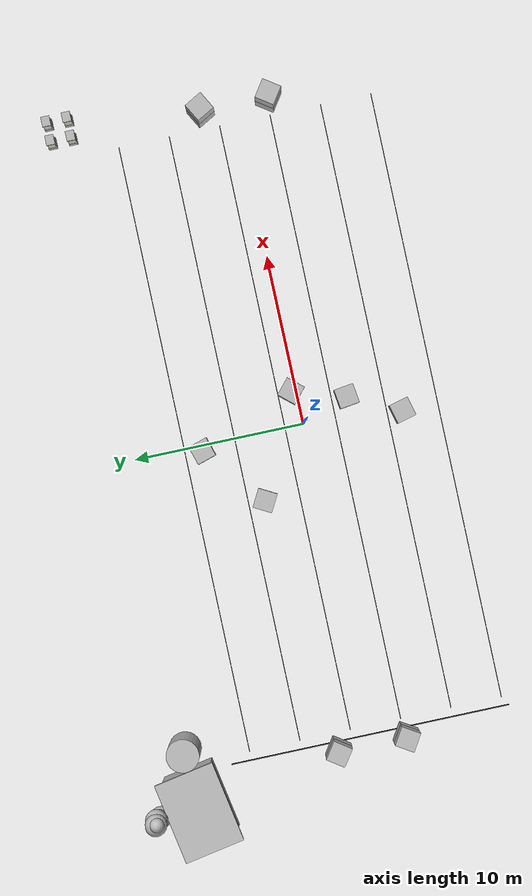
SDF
<sdf version="1.6">
 <world name="default">
  <model name="bee_hives">
   <static>true</static>
   <link name="stand0">
    <pose>19.000 9.600 0.14 0 0 0</pose>
    <visual name="stand0_v">
     <geometry><box><size>0.600 0.500 0.280</size></box></geometry>
     <material>
      <script>
       <uri>model://orchard/materials/scripts</uri>
       <uri>model://orchard/materials/textures</uri>
       <name>Orchard/Timber</name>
      </script>
     </material>
    </visual>
   </link>
   <link name="hive0">
    <pose>19.000 9.600 0.60 0 0 0</pose>
    <visual name="hive0_v">
     <geometry><box><size>0.520 0.440 0.640</size></box></geometry>
     <material><ambient>0.320 0.316 0.296 1.00</ambient><diffuse>0.800 0.790 0.740 1.00</diffuse></material>
    </visual>
   </link>
   <link name="lid0">
    <pose>19.000 9.600 0.95 0 0 0</pose>
    <visual name="lid0_v">
     <geometry><box><size>0.580 0.500 0.060</size></box></geometry>
     <material>
      <script>
       <uri>model://orchard/materials/scripts</uri>
       <uri>model://orchard/materials/textures</uri>
       <name>Orchard/Metal</name>
      </script>
     </material>
    </visual>
   </link>
   <link name="stand1">
    <pose>20.100 9.600 0.14 0 0 0</pose>
    <visual name="stand1_v">
     <geometry><box><size>0.600 0.500 0.280</size></box></geometry>
     <material>
      <script>
       <uri>model://orchard/materials/scripts</uri>
       <uri>model://orchard/materials/textures</uri>
       <name>Orchard/Timber</name>
      </script>
     </material>
    </visual>
   </link>
   <link name="hive1">
    <pose>20.100 9.600 0.60 0 0 0</pose>
    <visual name="hive1_v">
     <geometry><box><size>0.520 0.440 0.640</size></box></geometry>
     <material><ambient>0.320 0.316 0.296 1.00</ambient><diffuse>0.800 0.790 0.740 1.00</diffuse></material>
    </visual>
   </link>
   <link name="lid1">
    <pose>20.100 9.600 0.95 0 0 0</pose>
    <visual name="lid1_v">
     <geometry><box><size>0.580 0.500 0.060</size></box></geometry>
     <material>
      <script>
       <uri>model://orchard/materials/scripts</uri>
       <uri>model://orchard/materials/textures</uri>
       <name>Orchard/Metal</name>
      </script>
     </material>
    </visual>
   </link>
   <link name="stand2">
    <pose>19.000 10.800 0.14 0 0 0</pose>
    <visual name="stand2_v">
     <geometry><box><size>0.600 0.500 0.280</size></box></geometry>
     <material>
      <script>
       <uri>model://orchard/materials/scripts</uri>
       <uri>model://orchard/materials/textures</uri>
       <name>Orchard/Timber</name>
      </script>
     </material>
    </visual>
   </link>
   <link name="hive2">
    <pose>19.000 10.800 0.60 0 0 0</pose>
    <visual name="hive2_v">
     <geometry><box><size>0.520 0.440 0.640</size></box></geometry>
     <material><ambient>0.320 0.316 0.296 1.00</ambient><diffuse>0.800 0.790 0.740 1.00</diffuse></material>
    </visual>
   </link>
   <link name="lid2">
    <pose>19.000 10.800 0.95 0 0 0</pose>
    <visual name="lid2_v">
     <geometry><box><size>0.580 0.500 0.060</size></box></geometry>
     <material>
      <script>
       <uri>model://orchard/materials/scripts</uri>
       <uri>model://orchard/materials/textures</uri>
       <name>Orchard/Metal</name>
      </script>
     </material>
    </visual>
   </link>
   <link name="stand3">
    <pose>20.100 10.800 0.14 0 0 0</pose>
    <visual name="stand3_v">
     <geometry><box><size>0.600 0.500 0.280</size></box></geometry>
     <material>
      <script>
       <uri>model://orchard/materials/scripts</uri>
       <uri>model://orchard/materials/textures</uri>
       <name>Orchard/Timber</name>
      </script>
     </material>
    </visual>
   </link>
   <link name="hive3">
    <pose>20.100 10.800 0.60 0 0 0</pose>
    <visual name="hive3_v">
     <geometry><box><size>0.520 0.440 0.640</size></box></geometry>
     <material><ambient>0.320 0.316 0.296 1.00</ambient><diffuse>0.800 0.790 0.740 1.00</diffuse></material>
    </visual>
   </link>
   <link name="lid3">
    <pose>20.100 10.800 0.95 0 0 0</pose>
    <visual name="lid3_v">
     <geometry><box><size>0.580 0.500 0.060</size></box></geometry>
     <material>
      <script>
       <uri>model://orchard/materials/scripts</uri>
       <uri>model://orchard/materials/textures</uri>
       <name>Orchard/Metal</name>
      </script>
     </material>
    </visual>
   </link>
  </model>
  <model name="irrigation">
   <static>true</static>
   <link name="header">
    <pose>-18.500 0 0.05 1.5708 0 0</pose>
    <visual name="header_v">
     <geometry><cylinder><radius>0.0350</radius><length>16.5000</length></cylinder></geometry>
     <material><ambient>0.064 0.064 0.068 1.00</ambient><diffuse>0.160 0.160 0.170 1.00</diffuse></material>
    </visual>
   </link>
   <link name="drip0">
    <pose>0 -7.920 0.028 0 1.5708 0</pose>
    <visual name="drip0_v">
     <geometry><cylinder><radius>0.0160</radius><length>36.0000</length></cylinder></geometry>
     <material><ambient>0.064 0.064 0.068 1.00</ambient><diffuse>0.160 0.160 0.170 1.00</diffuse></material>
    </visual>
   </link>
   <link name="drip1">
    <pose>0 -4.920 0.028 0 1.5708 0</pose>
    <visual name="drip1_v">
     <geometry><cylinder><radius>0.0160</radius><length>36.0000</length></cylinder></geometry>
     <material><ambient>0.064 0.064 0.068 1.00</ambient><diffuse>0.160 0.160 0.170 1.00</diffuse></material>
    </visual>
   </link>
   <link name="drip2">
    <pose>0 -1.920 0.028 0 1.5708 0</pose>
    <visual name="drip2_v">
     <geometry><cylinder><radius>0.0160</radius><length>36.0000</length></cylinder></geometry>
     <material><ambient>0.064 0.064 0.068 1.00</ambient><diffuse>0.160 0.160 0.170 1.00</diffuse></material>
    </visual>
   </link>
   <link name="drip3">
    <pose>0 1.080 0.028 0 1.5708 0</pose>
    <visual name="drip3_v">
     <geometry><cylinder><radius>0.0160</radius><length>36.0000</length></cylinder></geometry>
     <material><ambient>0.064 0.064 0.068 1.00</ambient><diffuse>0.160 0.160 0.170 1.00</diffuse></material>
    </visual>
   </link>
   <link name="drip4">
    <pose>0 4.080 0.028 0 1.5708 0</pose>
    <visual name="drip4_v">
     <geometry><cylinder><radius>0.0160</radius><length>36.0000</length></cylinder></geometry>
     <material><ambient>0.064 0.064 0.068 1.00</ambient><diffuse>0.160 0.160 0.170 1.00</diffuse></material>
    </visual>
   </link>
   <link name="drip5">
    <pose>0 7.080 0.028 0 1.5708 0</pose>
    <visual name="drip5_v">
     <geometry><cylinder><radius>0.0160</radius><length>36.0000</length></cylinder></geometry>
     <material><ambient>0.064 0.064 0.068 1.00</ambient><diffuse>0.160 0.160 0.170 1.00</diffuse></material>
    </visual>
   </link>
  </model>
  <model name="packing_shed">
   <static>true</static>
   <link name="walls">
    <pose>-20.200 10.400 1.20 0 0 0.18</pose>
    <collision name="walls_c"><geometry><box><size>4.200 3.000 2.400</size></box></geometry></collision>
    <visual name="walls_v">
     <geometry><box><size>4.200 3.000 2.400</size></box></geometry>
     <material>
      <script>
       <uri>model://orchard/materials/scripts</uri>
       <uri>model://orchard/materials/textures</uri>
       <name>Orchard/Timber</name>
      </script>
     </material>
    </visual>
   </link>
   <link name="roof">
    <pose>-20.200 10.400 2.47 0 0 0.18</pose>
    <visual name="roof_v">
     <geometry><box><size>4.700 3.500 0.140</size></box></geometry>
     <material>
      <script>
       <uri>model://orchard/materials/scripts</uri>
       <uri>model://orchard/materials/textures</uri>
       <name>Orchard/Metal</name>
      </script>
     </material>
    </visual>
   </link>
  </model>
  <model name="water_tank">
   <static>true</static>
   <link name="drum">
    <pose>-17.000 10.700 1.00 0 0 0</pose>
    <collision name="drum_c">
     <geometry><cylinder><radius>0.9500</radius><length>2.0000</length></cylinder></geometry>
    </collision>
    <visual name="drum_v">
     <geometry><cylinder><radius>0.9500</radius><length>2.0000</length></cylinder></geometry>
     <material>
      <script>
       <uri>model://orchard/materials/scripts</uri>
       <uri>model://orchard/materials/textures</uri>
       <name>Orchard/Metal</name>
      </script>
     </material>
    </visual>
   </link>
  </model>
  <model name="bin_0">
   <static>true</static>
   <link name="crate0">
    <pose>-18.900 -2.000 0.380 0 0 1.017</pose>
    <collision name="crate0_c"><geometry><box><size>1.150 1.150 0.740</size></box></geometry></collision>
    <visual name="crate0_v">
     <geometry><box><size>1.150 1.150 0.740</size></box></geometry>
     <material>
      <script>
       <uri>model://orchard/materials/scripts</uri>
       <uri>model://orchard/materials/textures</uri>
       <name>Orchard/Timber</name>
      </script>
     </material>
    </visual>
   </link>
   <link name="crate1">
    <pose>-18.900 -2.000 1.140 0 0 1.017</pose>
    <visual name="crate1_v">
     <geometry><box><size>1.150 1.150 0.740</size></box></geometry>
     <material>
      <script>
       <uri>model://orchard/materials/scripts</uri>
       <uri>model://orchard/materials/textures</uri>
       <name>Orchard/Timber</name>
      </script>
     </material>
    </visual>
   </link>
  </model>
  <model name="bin_1">
   <static>true</static>
   <link name="crate0">
    <pose>-18.900 2.000 0.380 0 0 2.535</pose>
    <collision name="crate0_c"><geometry><box><size>1.150 1.150 0.740</size></box></geometry></collision>
    <visual name="crate0_v">
     <geometry><box><size>1.150 1.150 0.740</size></box></geometry>
     <material>
      <script>
       <uri>model://orchard/materials/scripts</uri>
       <uri>model://orchard/materials/textures</uri>
       <name>Orchard/Timber</name>
      </script>
     </material>
    </visual>
   </link>
   <link name="crate1">
    <pose>-18.900 2.000 1.140 0 0 2.535</pose>
    <visual name="crate1_v">
     <geometry><box><size>1.150 1.150 0.740</size></box></geometry>
     <material>
      <script>
       <uri>model://orchard/materials/scripts</uri>
       <uri>model://orchard/materials/textures</uri>
       <name>Orchard/Timber</name>
      </script>
     </material>
    </visual>
   </link>
  </model>
  <model name="bin_2">
   <static>true</static>
   <link name="crate0">
    <pose>18.900 -2.000 0.380 0 0 2.539</pose>
    <collision name="crate0_c"><geometry><box><size>1.150 1.150 0.740</size></box></geometry></collision>
    <visual name="crate0_v">
     <geometry><box><size>1.150 1.150 0.740</size></box></geometry>
     <material>
      <script>
       <uri>model://orchard/materials/scripts</uri>
       <uri>model://orchard/materials/textures</uri>
       <name>Orchard/Timber</name>
      </script>
     </material>
    </visual>
   </link>
   <link name="crate1">
    <pose>18.900 -2.000 1.140 0 0 2.539</pose>
    <visual name="crate1_v">
     <geometry><box><size>1.150 1.150 0.740</size></box></geometry>
     <material>
      <script>
       <uri>model://orchard/materials/scripts</uri>
       <uri>model://orchard/materials/textures</uri>
       <name>Orchard/Timber</name>
      </script>
     </material>
    </visual>
   </link>
  </model>
  <model name="bin_3">
   <static>true</static>
   <link name="crate0">
    <pose>18.900 2.000 0.380 0 0 2.075</pose>
    <collision name="crate0_c"><geometry><box><size>1.150 1.150 0.740</size></box></geometry></collision>
    <visual name="crate0_v">
     <geometry><box><size>1.150 1.150 0.740</size></box></geometry>
     <material>
      <script>
       <uri>model://orchard/materials/scripts</uri>
       <uri>model://orchard/materials/textures</uri>
       <name>Orchard/Timber</name>
      </script>
     </material>
    </visual>
   </link>
   <link name="crate1">
    <pose>18.900 2.000 1.140 0 0 2.075</pose>
    <visual name="crate1_v">
     <geometry><box><size>1.150 1.150 0.740</size></box></geometry>
     <material>
      <script>
       <uri>model://orchard/materials/scripts</uri>
       <uri>model://orchard/materials/textures</uri>
       <name>Orchard/Timber</name>
      </script>
     </material>
    </visual>
   </link>
  </model>
  <model name="bin_4">
   <static>true</static>
   <link name="crate0">
    <pose>-0.459 -5.759 0.380 0 0 1.822</pose>
    <collision name="crate0_c"><geometry><box><size>1.150 1.150 0.740</size></box></geometry></collision>
    <visual name="crate0_v">
     <geometry><box><size>1.150 1.150 0.740</size></box></geometry>
     <material>
      <script>
       <uri>model://orchard/materials/scripts</uri>
       <uri>model://orchard/materials/textures</uri>
       <name>Orchard/Timber</name>
      </script>
     </material>
    </visual>
   </link>
  </model>
  <model name="bin_5">
   <static>true</static>
   <link name="crate0">
    <pose>1.019 -2.774 0.380 0 0 0.138</pose>
    <collision name="crate0_c"><geometry><box><size>1.150 1.150 0.740</size></box></geometry></collision>
    <visual name="crate0_v">
     <geometry><box><size>1.150 1.150 0.740</size></box></geometry>
     <material>
      <script>
       <uri>model://orchard/materials/scripts</uri>
       <uri>model://orchard/materials/textures</uri>
       <name>Orchard/Timber</name>
      </script>
     </material>
    </visual>
   </link>
  </model>
  <model name="bin_6">
   <static>true</static>
   <link name="crate0">
    <pose>1.990 0.297 0.380 0 0 2.426</pose>
    <collision name="crate0_c"><geometry><box><size>1.150 1.150 0.740</size></box></geometry></collision>
    <visual name="crate0_v">
     <geometry><box><size>1.150 1.150 0.740</size></box></geometry>
     <material>
      <script>
       <uri>model://orchard/materials/scripts</uri>
       <uri>model://orchard/materials/textures</uri>
       <name>Orchard/Timber</name>
      </script>
     </material>
    </visual>
   </link>
  </model>
  <model name="bin_7">
   <static>true</static>
   <link name="crate0">
    <pose>-3.877 3.097 0.380 0 0 1.068</pose>
    <collision name="crate0_c"><geometry><box><size>1.150 1.150 0.740</size></box></geometry></collision>
    <visual name="crate0_v">
     <geometry><box><size>1.150 1.150 0.740</size></box></geometry>
     <material>
      <script>
       <uri>model://orchard/materials/scripts</uri>
       <uri>model://orchard/materials/textures</uri>
       <name>Orchard/Timber</name>
      </script>
     </material>
    </visual>
   </link>
  </model>
  <model name="bin_8">
   <static>true</static>
   <link name="crate0">
    <pose>-0.319 6.044 0.380 0 0 0.298</pose>
    <collision name="crate0_c"><geometry><box><size>1.150 1.150 0.740</size></box></geometry></collision>
    <visual name="crate0_v">
     <geometry><box><size>1.150 1.150 0.740</size></box></geometry>
     <material>
      <script>
       <uri>model://orchard/materials/scripts</uri>
       <uri>model://orchard/materials/textures</uri>
       <name>Orchard/Timber</name>
      </script>
     </material>
    </visual>
   </link>
  </model>
  <model name="windbreak_0">
   <static>true</static>
   <link name="trunk">
    <pose>-20.100 12.700 0.796 0 0 0</pose>
    <collision name="trunk_c">
     <geometry><cylinder><radius>0.0900</radius><length>1.5929</length></cylinder></geometry>
    </collision>
    <visual name="trunk_v">
     <geometry><cylinder><radius>0.0900</radius><length>1.5929</length></cylinder></geometry>
     <material>
      <script>
       <uri>model://orchard/materials/scripts</uri>
       <uri>model://orchard/materials/textures</uri>
       <name>Orchard/Bark</name>
      </script>
     </material>
    </visual>
   </link>
   <link name="crown0">
    <pose>-20.137 12.632 1.933 0 0 0</pose>
    <visual name="crown0_v">
     <geometry><sphere><radius>0.6200</radius></sphere></geometry>
     <material>
      <script>
       <uri>model://orchard/materials/scripts</uri>
       <uri>model://orchard/materials/textures</uri>
       <name>Orchard/Foliage3</name>
      </script>
     </material>
    </visual>
   </link>
   <link name="crown1">
    <pose>-20.153 12.745 2.393 0 0 0</pose>
    <visual name="crown1_v">
     <geometry><sphere><radius>0.6200</radius></sphere></geometry>
     <material>
      <script>
       <uri>model://orchard/materials/scripts</uri>
       <uri>model://orchard/materials/textures</uri>
       <name>Orchard/Foliage3</name>
      </script>
     </material>
    </visual>
   </link>
   <link name="crown2">
    <pose>-20.014 12.780 2.853 0 0 0</pose>
    <visual name="crown2_v">
     <geometry><sphere><radius>0.6200</radius></sphere></geometry>
     <material>
      <script>
       <uri>model://orchard/materials/scripts</uri>
       <uri>model://orchard/materials/textures</uri>
       <name>Orchard/Foliage0</name>
      </script>
     </material>
    </visual>
   </link>
   <link name="crown3">
    <pose>-20.142 12.777 3.313 0 0 0</pose>
    <visual name="crown3_v">
     <geometry><sphere><radius>0.6200</radius></sphere></geometry>
     <material>
      <script>
       <uri>model://orchard/materials/scripts</uri>
       <uri>model://orchard/materials/textures</uri>
       <name>Orchard/Foliage2</name>
      </script>
     </material>
    </visual>
   </link>
   <link name="crown4">
    <pose>-20.037 12.659 3.773 0 0 0</pose>
    <visual name="crown4_v">
     <geometry><sphere><radius>0.4000</radius></sphere></geometry>
     <material>
      <script>
       <uri>model://orchard/materials/scripts</uri>
       <uri>model://orchard/materials/textures</uri>
       <name>Orchard/Foliage3</name>
      </script>
     </material>
    </visual>
   </link>
  </model>
 </world>
</sdf>
